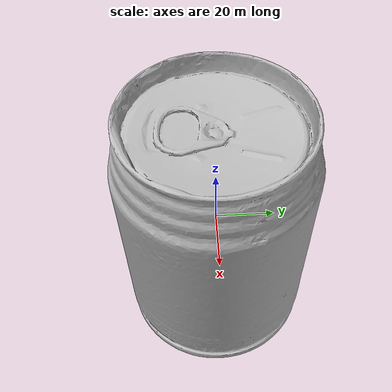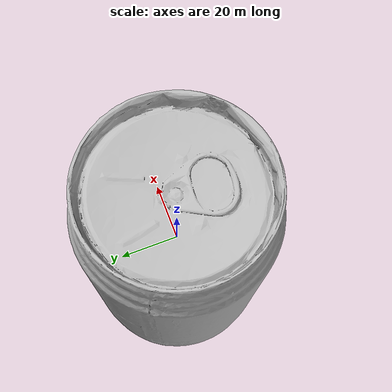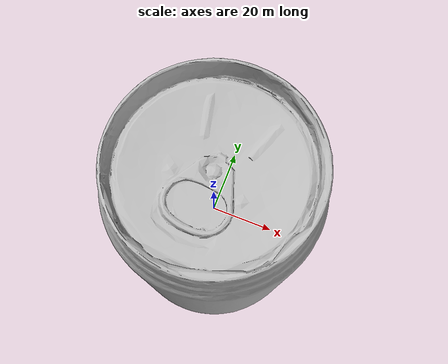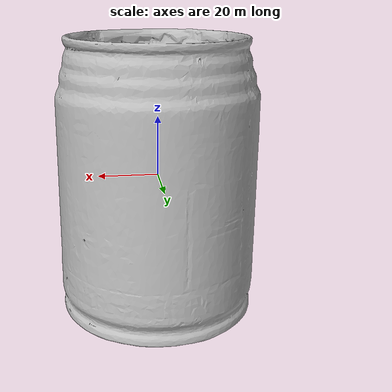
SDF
<sdf version="1.4">
 <world name="default">
  <light name="light1" type="point">
   <pose>0 0 1 0 0 0</pose>
   <diffuse>3 3 3 1</diffuse>
   <specular>3 3 3 1</specular>
  </light>
  <light name="light2" type="point">
   <pose>0 0.5 2 0 0 0</pose>
   <diffuse>1 1 1 1</diffuse>
   <specular>1 1 1 1</specular>
  </light>
  <light name="light3" type="point">
   <pose>0 0.5 2 0 0 0</pose>
   <diffuse>3 3 3 1</diffuse>
   <specular>3 3 3 1</specular>
  </light>
  <scene><ambient>0.7 0.7 0.7</ambient></scene>
  <model name="box1">
   <link name="link_box1">
    <collision name="default">
     <geometry>
      <mesh><uri>model://wooden_puzzle1/collision_meshes/collision.obj</uri><scale>1.0 1.0 1.0</scale></mesh>
     </geometry>
     <surface>
      <friction><ode><mu>0.5</mu><mu2>0.5</mu2></ode></friction>
      <contact><ode><max_vel>0</max_vel><min_depth>0.0001</min_depth><kp>1e8</kp></ode></contact>
     </surface>
    </collision>
    <visual name="default">
     <geometry>
      <mesh><uri>model://wooden_puzzle1/visual_meshes/visual.dae</uri><scale>1.0 1.0 1.0</scale></mesh>
     </geometry>
    </visual>
    <inertial>
     <mass>0.020629532635211945</mass>
     <pose>-0.0001735068071866408 7.972260937094688e-05 -9.191555000143126e-05 -0.07784798349428995 -0.2636160818751574 -0.552872324185161</pose>
     <inertia>
      <ixx>3.8922285e-06</ixx>
      <iyy>3.817302e-06</iyy>
      <izz>3.8628423e-06</izz>
      <ixy>0</ixy>
      <ixz>0</ixz>
      <iyz>0</iyz>
     </inertia>
    </inertial>
   </link>
   <pose>0.02133958786725998 -0.3830716609954834 0.016801992431282997 0.010516603336821546 -0.00945739879436927 0.00011262149992147956</pose>
  </model>
  <model name="box3">
   <link name="link_box3">
    <collision name="default">
     <geometry>
      <mesh><uri>model://wooden_puzzle2/collision_meshes/collision.obj</uri><scale>1.0 1.0 1.0</scale></mesh>
     </geometry>
     <surface>
      <friction><ode><mu>0.5</mu><mu2>0.5</mu2></ode></friction>
      <contact><ode><max_vel>0</max_vel><min_depth>0.0001</min_depth><kp>1e8</kp></ode></contact>
     </surface>
    </collision>
    <visual name="default">
     <geometry>
      <mesh><uri>model://wooden_puzzle2/visual_meshes/visual.dae</uri><scale>1.0 1.0 1.0</scale></mesh>
     </geometry>
    </visual>
    <inertial>
     <mass>0.05583015829324722</mass>
     <pose>2.7402536943554878e-05 4.997663199901581e-05 6.587122334167361e-05 -0.19203199902598803 0.6112853789707493 -0.6338693450254121</pose>
     <inertia>
      <ixx>1.0378231e-05</ixx>
      <iyy>1.06642165e-05</iyy>
      <izz>1.0512509e-05</izz>
      <ixy>0</ixy>
      <ixz>0</ixz>
      <iyz>0</iyz>
     </inertia>
    </inertial>
   </link>
   <pose>-0.08282777667045593 0.07179015129804611 0.01691773533821106 0.02084850326362166 0.0007209529711400008 -1.5251250093015307</pose>
  </model>
  <model name="can1">
   <link name="link_can1">
    <collision name="default">
     <geometry>
      <mesh><uri>model://pepsi/collision_meshes/collision.obj</uri><scale>1.0 1.0 1.0</scale></mesh>
     </geometry>
     <surface>
      <friction><ode><mu>0.5</mu><mu2>0.5</mu2></ode></friction>
      <contact><ode><max_vel>0</max_vel><min_depth>0.0001</min_depth><kp>1e8</kp></ode></contact>
     </surface>
    </collision>
    <visual name="default">
     <geometry><mesh><uri>model://pepsi/visual_meshes/visual.dae</uri><scale>1.0 1.0 1.0</scale></mesh></geometry>
    </visual>
    <inertial>
     <mass>0.49348899722099304</mass>
     <pose>-7.5590331107378e-05 2.9931279641459696e-05 -0.0003384356386959553 -0.0010677622415870868 -0.0021735774955872703 0.5673701275352521</pose>
     <inertia>
      <ixx>0.0009831247</ixx>
      <iyy>0.0009824084</iyy>
      <izz>0.00020924417</izz>
      <ixy>0</ixy>
      <ixz>0</ixz>
      <iyz>0</iyz>
     </inertia>
    </inertial>
   </link>
   <pose>0.27047497034072876 -0.12676891684532166 0.07449637353420258 -1.894200487790021e-05 2.1178356275775783e-06 -0.744065848904641</pose>
  </model>
  <model name="can2">
   <link name="link_can2">
    <collision name="default">
     <geometry>
      <mesh><uri>model://redbull/collision_meshes/collision.obj</uri><scale>1.0 1.0 1.0</scale></mesh>
     </geometry>
     <surface>
      <friction><ode><mu>0.5</mu><mu2>0.5</mu2></ode></friction>
      <contact><ode><max_vel>0</max_vel><min_depth>0.0001</min_depth><kp>1e8</kp></ode></contact>
     </surface>
    </collision>
    <visual name="default">
     <geometry>
      <mesh><uri>model://redbull/visual_meshes/visual.dae</uri><scale>1.0 1.0 1.0</scale></mesh>
     </geometry>
    </visual>
    <inertial>
     <mass>0.3443465232849121</mass>
     <pose>-2.2127078409539536e-05 -0.00012659528874792159 -0.0006860987632535398 0.0011367237692686564 -0.010800964902263904 0.5859097418646089</pose>
     <inertia>
      <ixx>0.0003237599</ixx>
      <iyy>0.00032403314</iyy>
      <izz>0.00019212745</izz>
      <ixy>0</ixy>
      <ixz>0</ixz>
      <iyz>0</iyz>
     </inertia>
    </inertial>
   </link>
   <pose>0.26643338799476624 0.22396889328956604 0.04638563096523285 -0.010489743300575562 0.0072607903552431505 0.31841396170451214</pose>
  </model>
  <physics type="ode">
   <max_contacts>50</max_contacts>
   <ode>
    <solver><type>quick</type><iters>75</iters></solver>
    <constraints>
     <contact_max_correcting_vel>0</contact_max_correcting_vel>
     <contact_surface_layer>0</contact_surface_layer>
    </constraints>
   </ode>
  </physics>
 </world>
</sdf>
